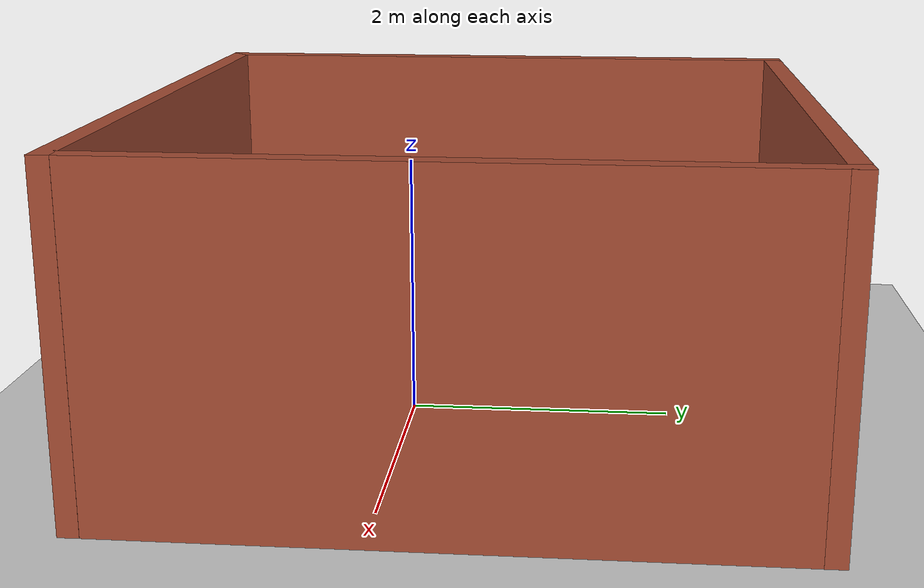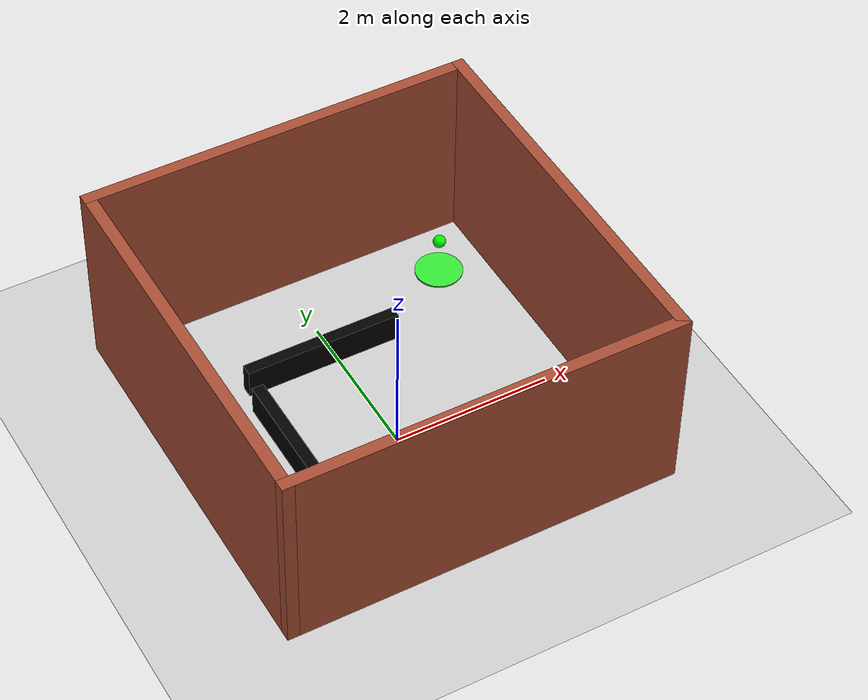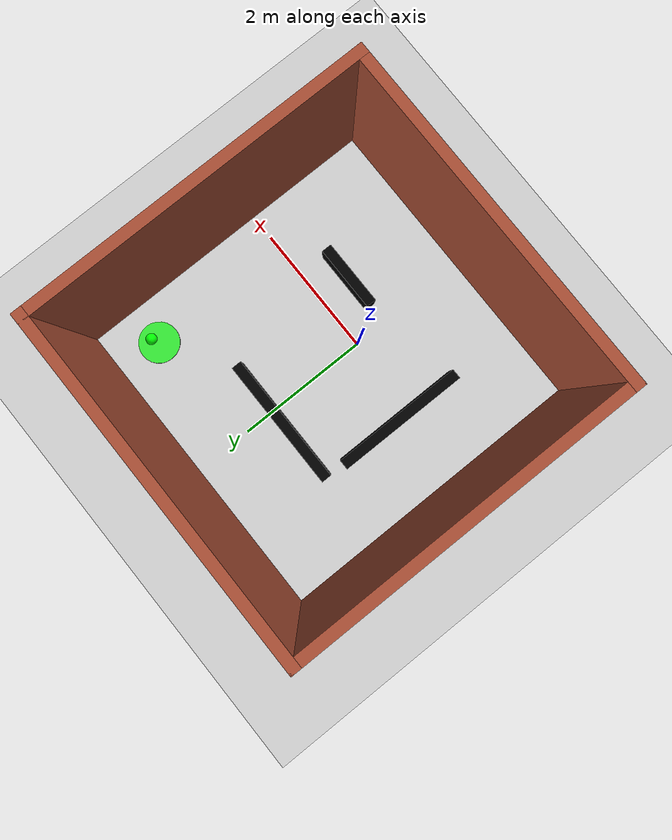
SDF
<sdf version='1.7'>
  <world name='default'>
    <include>
      <uri>model://sun</uri>
    </include>

    <include>
      <uri>model://ground_plane</uri>
    </include>

    <physics type='ode'>
      <max_step_size>0.001</max_step_size>
      <real_time_factor>1</real_time_factor>
      <real_time_update_rate>1000</real_time_update_rate>
    </physics>

    <plugin name="gazebo_ros_state" filename="libgazebo_ros_state.so">
      <ros><namespace>/</namespace></ros>
    </plugin>

    <model name='maze_medium'>
      <static>1</static>
      <pose>0.31 0.52 0 0 0 0</pose>

      <!-- ============ OUTER WALLS (unchanged from original) ============ -->

      <link name='Wall_0'>
        <pose>-0.268 2.425 0 0 0 0</pose>
        <collision name='Wall_0_Collision'><geometry><box><size>5 0.15 2.5</size></box></geometry></collision>
        <visual name='Wall_0_Visual'><pose>0 0 1.25 0 0 0</pose><geometry><box><size>5 0.15 2.5</size></box></geometry>
          <material><script><uri>file://media/materials/scripts/gazebo.material</uri><name>Gazebo/Bricks</name></script><ambient>1 1 1 1</ambient></material>
        </visual>
      </link>

      <link name='Wall_1'>
        <pose>2.156 0 0 0 0 -1.5708</pose>
        <collision name='Wall_1_Collision'><geometry><box><size>5 0.15 2.5</size></box></geometry></collision>
        <visual name='Wall_1_Visual'><pose>0 0 1.25 0 0 0</pose><geometry><box><size>5 0.15 2.5</size></box></geometry>
          <material><script><uri>file://media/materials/scripts/gazebo.material</uri><name>Gazebo/Bricks</name></script><ambient>1 1 1 1</ambient></material>
        </visual>
      </link>

      <link name='Wall_2'>
        <pose>-0.268 -2.425 0 0 0 3.14159</pose>
        <collision name='Wall_2_Collision'><geometry><box><size>5 0.15 2.5</size></box></geometry></collision>
        <visual name='Wall_2_Visual'><pose>0 0 1.25 0 0 0</pose><geometry><box><size>5 0.15 2.5</size></box></geometry>
          <material><script><uri>file://media/materials/scripts/gazebo.material</uri><name>Gazebo/Bricks</name></script><ambient>1 1 1 1</ambient></material>
        </visual>
      </link>

      <link name='Wall_3'>
        <pose>-2.693 0 0 0 0 1.5708</pose>
        <collision name='Wall_3_Collision'><geometry><box><size>5 0.15 2.5</size></box></geometry></collision>
        <visual name='Wall_3_Visual'><pose>0 0 1.25 0 0 0</pose><geometry><box><size>5 0.15 2.5</size></box></geometry>
          <material><script><uri>file://media/materials/scripts/gazebo.material</uri><name>Gazebo/Bricks</name></script><ambient>1 1 1 1</ambient></material>
        </visual>
      </link>

      <!-- ============ INTERNAL WALLS (3 walls, wider gaps) ============ -->

      <link name='Wall_A'>
        <pose>-0.5 1.0 0 0 0 0</pose>
        <collision name='Wall_A_Collision'><geometry><box><size>2.0 0.15 0.75</size></box></geometry></collision>
        <visual name='Wall_A_Visual'><geometry><box><size>2.0 0.15 0.75</size></box></geometry>
          <material><ambient>0 0 0 1</ambient><diffuse>0 0 0 1</diffuse></material>
        </visual>
      </link>

      <link name='Wall_B'>
        <pose>-1.5 -0.3 0 0 0 1.5708</pose>
        <collision name='Wall_B_Collision'><geometry><box><size>2.0 0.15 0.75</size></box></geometry></collision>
        <visual name='Wall_B_Visual'><geometry><box><size>2.0 0.15 0.75</size></box></geometry>
          <material><ambient>0 0 0 1</ambient><diffuse>0 0 0 1</diffuse></material>
        </visual>
      </link>

      <link name='Wall_C'>
        <pose>0.5 -1.0 0 0 0 0</pose>
        <collision name='Wall_C_Collision'><geometry><box><size>1.0 0.15 0.75</size></box></geometry></collision>
        <visual name='Wall_C_Visual'><geometry><box><size>1.0 0.15 0.75</size></box></geometry>
          <material><ambient>0 0 0 1</ambient><diffuse>0 0 0 1</diffuse></material>
        </visual>
      </link>

    </model>

    <model name='target_mark'>
      <static>1</static>
      <pose>1.8 2.2 0.01 0 0 0</pose>
      <link name='link_0'>
        <visual name='visual'>
          <geometry><cylinder><radius>0.3</radius><length>0.02</length></cylinder></geometry>
          <material>
            <ambient>0.1 0.8 0.1 1</ambient>
            <diffuse>0.2 0.9 0.2 1</diffuse>
          </material>
        </visual>
      </link>
    </model>

    <model name='target_beacon'>
      <static>1</static>
      <pose>1.8 2.2 0.5 0 0 0</pose>
      <link name='link_1'>
        <visual name='visual'>
          <geometry>
            <sphere>
              <radius>0.08</radius></sphere>
          </geometry>
          <material>
            <ambient>0 1 0 1</ambient>
            <diffuse>0 1 0 1</diffuse>
            <specular>0.1 0.1 0.1 1</specular>
            <emissive>0 0.5 0 1</emissive></material>
        </visual>
        <collision name='collision'>
          <geometry>
            <sphere><radius>0.15</radius></sphere>
          </geometry>
        </collision>
      </link>
    </model>

    <gui fullscreen='0'>
      <camera name='user_camera'>
        <pose>0.86 2.23 26.28 0 1.47 1.55</pose>
        <view_controller>orbit</view_controller>
      </camera>
    </gui>
  </world>
</sdf>
